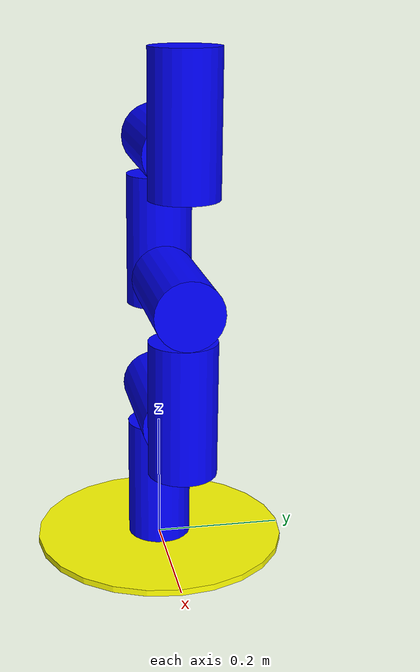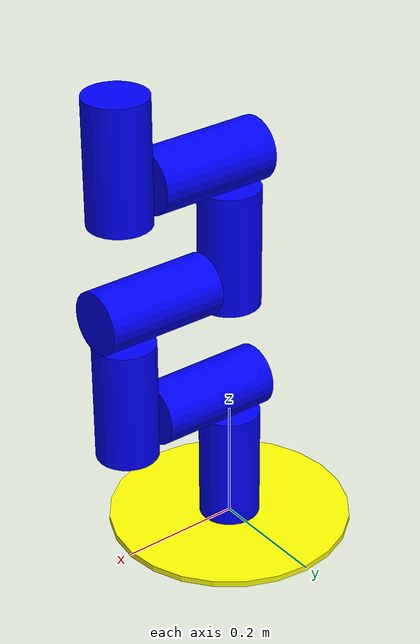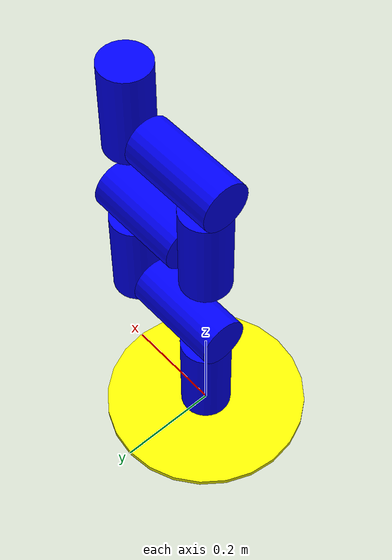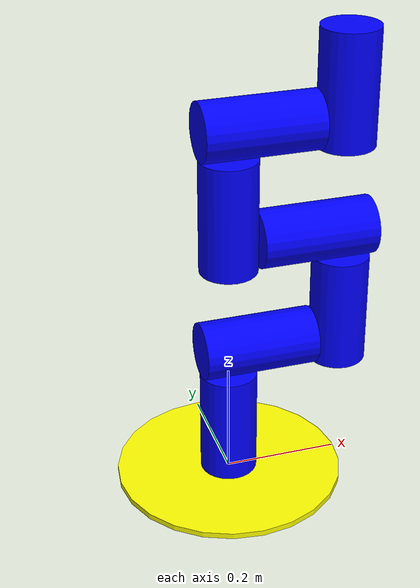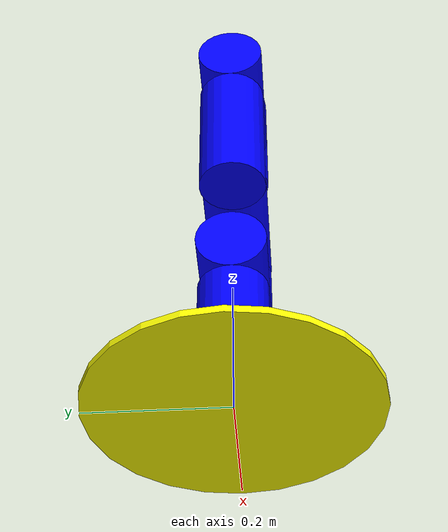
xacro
<?xml version="1.0"?>

<robot name="Kuka_LBR_iiwa7_R800" xmlns:xacro="http://wiki.ros.org/xacro">
    <xacro:include filename="$(find kuka_robot)/urdf/kuka_macro.xacro" />

		<xacro:base_link_macro
			base_link_name="base_link">
		</xacro:base_link_macro>

		<xacro:kuka_joint
			name="v_joint1"
			type="revolute"
			parent="base_link"
			child="v_link1">
			<origin xyz="0 0 0.1" />
			<axis xyz="0 0 1"/>
		</xacro:kuka_joint>

		<xacro:kuka_link name="v_link1">
			<geometry>
				<cylinder length="0.2" radius="0.05"/>
			</geometry>
			<origin xyz="0 0 0" rpy="0 0 0"/>
		</xacro:kuka_link>

		<xacro:kuka_joint
			name="h_joint2"
			type="revolute"
			parent="v_link1"
			child="h_link2">
			<origin xyz="0.05 0 ${0.2 - 0.05}" />
			<axis xyz="1 0 0"/>
		</xacro:kuka_joint>

		<xacro:kuka_link name="h_link2">
			<geometry>
				<cylinder length="0.2" radius="0.05"/>
			</geometry>
			<origin xyz="0 0 0" rpy="0 ${3.14 / 2} 0.0"/>
		</xacro:kuka_link>

    <xacro:kuka_joint
			name="v_joint3"
			type="revolute"
			parent="h_link2"
			child="v_link3">
			<origin xyz="0.15 0 0.05" />
			<axis xyz="0 0 1"/>
		</xacro:kuka_joint>

    <xacro:kuka_link name="v_link3">
			<geometry>
				<cylinder length="0.2" radius="0.05"/>
			</geometry>
			<origin xyz="0 0 0" rpy="0 0 0"/>
		</xacro:kuka_link>

    <xacro:kuka_joint
			name="h_joint4"
			type="revolute"
			parent="v_link3"
			child="h_link4">
			<origin xyz="0.05 0 ${0.2 - 0.05}" />
			<axis xyz="-1 0 0"/>
		</xacro:kuka_joint>

		<xacro:kuka_link name="h_link4">
			<geometry>
				<cylinder length="0.2" radius="0.05"/>
			</geometry>
			<origin xyz="${-1 * (0.2 - 0.1)} 0 0" rpy="0 ${3.14 / 2} 0.0"/>
		</xacro:kuka_link>

    <xacro:kuka_joint
			name="v_joint5"
			type="revolute"
			parent="h_link4"
			child="v_link5">
			<origin xyz="-0.25 0 0.05" />
			<axis xyz="0 0 1"/>
		</xacro:kuka_joint>

    <xacro:kuka_link name="v_link5">
			<geometry>
				<cylinder length="0.2" radius="0.05"/>
			</geometry>
			<origin xyz="0 0 0" rpy="0 0 0"/>
		</xacro:kuka_link>

    <xacro:kuka_joint
			name="h_joint6"
			type="revolute"
			parent="v_link5"
			child="h_link6">
			<origin xyz="0.05 0 ${0.2 - 0.05}" />
			<axis xyz="1 0 0"/>
		</xacro:kuka_joint>

		<xacro:kuka_link name="h_link6">
			<geometry>
				<cylinder length="0.2" radius="0.05"/>
			</geometry>
			<origin xyz="0 0 0" rpy="0 ${3.14 / 2} 0.0"/>
		</xacro:kuka_link>

    <xacro:kuka_joint
			name="v_joint7"
			type="revolute"
			parent="h_link6"
			child="v_link7">
			<origin xyz="0.15 0 0.05" />
			<axis xyz="0 0 1"/>
		</xacro:kuka_joint>

    <xacro:kuka_link name="v_link7">
			<geometry>
				<cylinder length="0.2" radius="0.05"/>
			</geometry>
			<origin xyz="0 0 0" rpy="0 0 0"/>
		</xacro:kuka_link>

</robot>

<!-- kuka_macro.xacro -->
<robot name="Kuka_LBR_iiwa7_R800_macro" xmlns:xacro="http://wiki.ros.org/xacro">

	<xacro:macro name="base_link_macro" params="base_link_name">
		<link name="${base_link_name}">
			<visual>
				<geometry>
					<cylinder length="0.01" radius="0.2"/>
				</geometry>
				<origin rpy="0 0 0" xyz="0 0 0"/>
					<material name="yellow">
						<color rgba="1 1 0 1"/>
					</material>
			</visual>
			<collision>
				<geometry>
					<cylinder length="0.03" radius="0.2"/>
				</geometry>
				<origin rpy="0 0 0" xyz="0 0 0"/>
			</collision>
			<inertial>
				<mass value="1"/>
					<inertia ixx="1.0" ixy="0.0" ixz="0.0" iyy="1.0" iyz="0.0" izz="1.0"/>
					</inertial>
		</link>
	</xacro:macro>

	<xacro:macro name="kuka_joint" params="name type parent child *origin *axis">
		<joint name="${name}" type="${type}">
			<parent link="${parent}" />
			<child link="${child}" />
	    <xacro:insert_block name="origin" />
			<xacro:insert_block name="axis" />
	    <limit effort="300" velocity="0.1" lower="-3.14" upper="3.14"/>
	    <dynamics damping="50" friction="1"/>
		</joint>
	</xacro:macro>

	<xacro:macro name="kuka_link" params="name *geometry *origin">
		<link name="${name}">
			<visual>
				<xacro:insert_block name="geometry" />
				<xacro:insert_block name="origin" />
		    <material name="blue">
		      <color rgba="0 0 1 1"/>
		    </material>
		  </visual>
		  <collision>
				<xacro:insert_block name="geometry" />
				<xacro:insert_block name="origin" />
			</collision>
			<inertial>
				<mass value="1"/>
					<inertia ixx="1.0" ixy="0.0" ixz="0.0" iyy="1.0" iyz="0.0" izz="1.0"/>
		  </inertial>
	  </link>
	</xacro:macro>

</robot>
